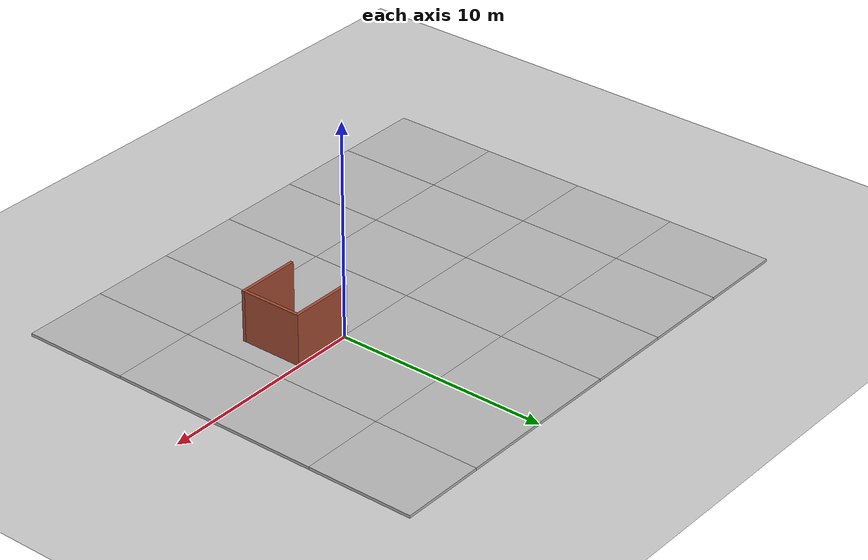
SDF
<sdf version="1.7">
 <world name="default">
  <light name="sun" type="directional">
   <pose>0 0 10 0 -0 0</pose>
   <diffuse>0.8 0.8 0.8 1</diffuse>
   <specular>0.2 0.2 0.2 1</specular>
   <attenuation>
    <range>1000</range>
    <constant>0.9</constant>
    <linear>0.01</linear>
    <quadratic>0.001</quadratic>
   </attenuation>
   <direction>-0.5 0.1 -0.9</direction>
   <spot><inner_angle>0</inner_angle><outer_angle>0</outer_angle><falloff>0</falloff></spot>
  </light>
  <model name="ground_plane">
   <static>1</static>
   <link name="link">
    <collision name="collision">
     <geometry><plane><normal>0 0 1</normal><size>100 100</size></plane></geometry>
     <surface>
      <contact><collide_bitmask>65535</collide_bitmask></contact>
      <friction><ode><mu>100</mu><mu2>50</mu2></ode></friction>
     </surface>
    </collision>
    <visual name="visual">
     <cast_shadows>0</cast_shadows>
     <geometry><plane><normal>0 0 1</normal><size>100 100</size></plane></geometry>
     <material>
      <script><uri>file://media/materials/scripts/gazebo.material</uri><name>Gazebo/Grey</name></script>
     </material>
    </visual>
   </link>
  </model>
  <gravity>0 0 -9.8</gravity>
  <magnetic_field>6e-06 2.3e-05 -4.2e-05</magnetic_field>
  <atmosphere type="adiabatic"/>
  <physics type="ode">
   <max_step_size>0.001</max_step_size>
   <real_time_factor>1</real_time_factor>
   <real_time_update_rate>1000</real_time_update_rate>
  </physics>
  <scene><ambient>0.4 0.4 0.4 1</ambient><background>0.7 0.7 0.7 1</background><shadows>1</shadows></scene>
  <audio><device>default</device></audio>
  <spherical_coordinates>
   <surface_model>EARTH_WGS84</surface_model>
   <latitude_deg>0</latitude_deg>
   <longitude_deg>0</longitude_deg>
   <elevation>0</elevation>
   <heading_deg>0</heading_deg>
  </spherical_coordinates>
  <model name="tomato_fram">
   <pose>1.425 -1.425 0 0 -0 0</pose>
   <link name="Wall_10">
    <collision name="Wall_10_Collision">
     <geometry><box><size>3 0.15 2.5</size></box></geometry>
     <pose>0 0 1.25 0 -0 0</pose>
    </collision>
    <visual name="Wall_10_Visual">
     <pose>0 0 1.25 0 -0 0</pose>
     <geometry><box><size>3 0.15 2.5</size></box></geometry>
     <material>
      <script><uri>file://media/materials/scripts/gazebo.material</uri><name>Gazebo/Bricks</name></script>
      <ambient>1 1 1 1</ambient>
     </material>
     <meta><layer>0</layer></meta>
    </visual>
    <pose>-0 -1.425 0 0 -0 3.14159</pose>
   </link>
   <link name="Wall_5">
    <collision name="Wall_5_Collision">
     <geometry><box><size>3 0.15 2.5</size></box></geometry>
     <pose>0 0 1.25 0 -0 0</pose>
    </collision>
    <visual name="Wall_5_Visual">
     <pose>0 0 1.25 0 -0 0</pose>
     <geometry><box><size>3 0.15 2.5</size></box></geometry>
     <material>
      <script><uri>file://media/materials/scripts/gazebo.material</uri><name>Gazebo/Bricks</name></script>
      <ambient>1 1 1 1</ambient>
     </material>
     <meta><layer>0</layer></meta>
    </visual>
    <pose>-0 1.425 0 0 -0 0</pose>
   </link>
   <link name="Wall_9">
    <collision name="Wall_9_Collision">
     <geometry><box><size>3 0.15 2.5</size></box></geometry>
     <pose>0 0 1.25 0 -0 0</pose>
    </collision>
    <visual name="Wall_9_Visual">
     <pose>0 0 1.25 0 -0 0</pose>
     <geometry><box><size>3 0.15 2.5</size></box></geometry>
     <material>
      <script><uri>file://media/materials/scripts/gazebo.material</uri><name>Gazebo/Bricks</name></script>
      <ambient>1 1 1 1</ambient>
     </material>
     <meta><layer>0</layer></meta>
    </visual>
    <pose>1.425 0 0 0 -0 -1.5708</pose>
   </link>
   <static>1</static>
  </model>
  <model name="mud_box">
   <static>1</static>
   <link name="link">
    <collision name="collision"><geometry><box><size>8 10 0.2</size></box></geometry></collision>
    <visual name="visual_1">
     <pose>-2 2.5 0 0 -0 0</pose>
     <cast_shadows>0</cast_shadows>
     <geometry><box><size>4 5 0.2</size></box></geometry>
     <material>
      <script>
       <uri>model://mud_box/materials/scripts</uri>
       <uri>model://mud_box/materials/textures</uri>
       <name>vrc/mud</name>
      </script>
     </material>
    </visual>
    <visual name="visual_2">
     <pose>2 2.5 0 0 -0 0</pose>
     <cast_shadows>0</cast_shadows>
     <geometry><box><size>4 5 0.2</size></box></geometry>
     <material>
      <script>
       <uri>model://mud_box/materials/scripts</uri>
       <uri>model://mud_box/materials/textures</uri>
       <name>vrc/mud</name>
      </script>
     </material>
    </visual>
    <visual name="visual_3">
     <pose>2 -2.5 0 0 -0 0</pose>
     <cast_shadows>0</cast_shadows>
     <geometry><box><size>4 5 0.2</size></box></geometry>
     <material>
      <script>
       <uri>model://mud_box/materials/scripts</uri>
       <uri>model://mud_box/materials/textures</uri>
       <name>vrc/mud</name>
      </script>
     </material>
    </visual>
    <visual name="visual_4">
     <pose>-2 -2.5 0 0 -0 0</pose>
     <cast_shadows>0</cast_shadows>
     <geometry><box><size>4 5 0.2</size></box></geometry>
     <material>
      <script>
       <uri>model://mud_box/materials/scripts</uri>
       <uri>model://mud_box/materials/textures</uri>
       <name>vrc/mud</name>
      </script>
     </material>
    </visual>
   </link>
   <pose>-4 -5 0 0 -0 0</pose>
  </model>
  <model name="mud_box_0">
   <static>1</static>
   <link name="link">
    <collision name="collision"><geometry><box><size>8 10 0.2</size></box></geometry></collision>
    <visual name="visual_1">
     <pose>-2 2.5 0 0 -0 0</pose>
     <cast_shadows>0</cast_shadows>
     <geometry><box><size>4 5 0.2</size></box></geometry>
     <material>
      <script>
       <uri>model://mud_box/materials/scripts</uri>
       <uri>model://mud_box/materials/textures</uri>
       <name>vrc/mud</name>
      </script>
     </material>
    </visual>
    <visual name="visual_2">
     <pose>2 2.5 0 0 -0 0</pose>
     <cast_shadows>0</cast_shadows>
     <geometry><box><size>4 5 0.2</size></box></geometry>
     <material>
      <script>
       <uri>model://mud_box/materials/scripts</uri>
       <uri>model://mud_box/materials/textures</uri>
       <name>vrc/mud</name>
      </script>
     </material>
    </visual>
    <visual name="visual_3">
     <pose>2 -2.5 0 0 -0 0</pose>
     <cast_shadows>0</cast_shadows>
     <geometry><box><size>4 5 0.2</size></box></geometry>
     <material>
      <script>
       <uri>model://mud_box/materials/scripts</uri>
       <uri>model://mud_box/materials/textures</uri>
       <name>vrc/mud</name>
      </script>
     </material>
    </visual>
    <visual name="visual_4">
     <pose>-2 -2.5 0 0 -0 0</pose>
     <cast_shadows>0</cast_shadows>
     <geometry><box><size>4 5 0.2</size></box></geometry>
     <material>
      <script>
       <uri>model://mud_box/materials/scripts</uri>
       <uri>model://mud_box/materials/textures</uri>
       <name>vrc/mud</name>
      </script>
     </material>
    </visual>
   </link>
   <pose>-4 5 0 0 -0 0</pose>
  </model>
  <model name="mud_box_1">
   <static>1</static>
   <link name="link">
    <collision name="collision"><geometry><box><size>8 10 0.2</size></box></geometry></collision>
    <visual name="visual_1">
     <pose>-2 2.5 0 0 -0 0</pose>
     <cast_shadows>0</cast_shadows>
     <geometry><box><size>4 5 0.2</size></box></geometry>
     <material>
      <script>
       <uri>model://mud_box/materials/scripts</uri>
       <uri>model://mud_box/materials/textures</uri>
       <name>vrc/mud</name>
      </script>
     </material>
    </visual>
    <visual name="visual_2">
     <pose>2 2.5 0 0 -0 0</pose>
     <cast_shadows>0</cast_shadows>
     <geometry><box><size>4 5 0.2</size></box></geometry>
     <material>
      <script>
       <uri>model://mud_box/materials/scripts</uri>
       <uri>model://mud_box/materials/textures</uri>
       <name>vrc/mud</name>
      </script>
     </material>
    </visual>
    <visual name="visual_3">
     <pose>2 -2.5 0 0 -0 0</pose>
     <cast_shadows>0</cast_shadows>
     <geometry><box><size>4 5 0.2</size></box></geometry>
     <material>
      <script>
       <uri>model://mud_box/materials/scripts</uri>
       <uri>model://mud_box/materials/textures</uri>
       <name>vrc/mud</name>
      </script>
     </material>
    </visual>
    <visual name="visual_4">
     <pose>-2 -2.5 0 0 -0 0</pose>
     <cast_shadows>0</cast_shadows>
     <geometry><box><size>4 5 0.2</size></box></geometry>
     <material>
      <script>
       <uri>model://mud_box/materials/scripts</uri>
       <uri>model://mud_box/materials/textures</uri>
       <name>vrc/mud</name>
      </script>
     </material>
    </visual>
   </link>
   <pose>4 -5 0 0 -0 0</pose>
  </model>
  <model name="mud_box_2">
   <static>1</static>
   <link name="link">
    <collision name="collision"><geometry><box><size>8 10 0.2</size></box></geometry></collision>
    <visual name="visual_1">
     <pose>-2 2.5 0 0 -0 0</pose>
     <cast_shadows>0</cast_shadows>
     <geometry><box><size>4 5 0.2</size></box></geometry>
     <material>
      <script>
       <uri>model://mud_box/materials/scripts</uri>
       <uri>model://mud_box/materials/textures</uri>
       <name>vrc/mud</name>
      </script>
     </material>
    </visual>
    <visual name="visual_2">
     <pose>2 2.5 0 0 -0 0</pose>
     <cast_shadows>0</cast_shadows>
     <geometry><box><size>4 5 0.2</size></box></geometry>
     <material>
      <script>
       <uri>model://mud_box/materials/scripts</uri>
       <uri>model://mud_box/materials/textures</uri>
       <name>vrc/mud</name>
      </script>
     </material>
    </visual>
    <visual name="visual_3">
     <pose>2 -2.5 0 0 -0 0</pose>
     <cast_shadows>0</cast_shadows>
     <geometry><box><size>4 5 0.2</size></box></geometry>
     <material>
      <script>
       <uri>model://mud_box/materials/scripts</uri>
       <uri>model://mud_box/materials/textures</uri>
       <name>vrc/mud</name>
      </script>
     </material>
    </visual>
    <visual name="visual_4">
     <pose>-2 -2.5 0 0 -0 0</pose>
     <cast_shadows>0</cast_shadows>
     <geometry><box><size>4 5 0.2</size></box></geometry>
     <material>
      <script>
       <uri>model://mud_box/materials/scripts</uri>
       <uri>model://mud_box/materials/textures</uri>
       <name>vrc/mud</name>
      </script>
     </material>
    </visual>
   </link>
   <pose>4 5 0 0 -0 0</pose>
  </model>
  <model name="mud_box_3">
   <static>1</static>
   <link name="link">
    <collision name="collision"><geometry><box><size>8 10 0.2</size></box></geometry></collision>
    <visual name="visual_1">
     <pose>-2 2.5 0 0 -0 0</pose>
     <cast_shadows>0</cast_shadows>
     <geometry><box><size>4 5 0.2</size></box></geometry>
     <material>
      <script>
       <uri>model://mud_box/materials/scripts</uri>
       <uri>model://mud_box/materials/textures</uri>
       <name>vrc/mud</name>
      </script>
     </material>
    </visual>
    <visual name="visual_2">
     <pose>2 2.5 0 0 -0 0</pose>
     <cast_shadows>0</cast_shadows>
     <geometry><box><size>4 5 0.2</size></box></geometry>
     <material>
      <script>
       <uri>model://mud_box/materials/scripts</uri>
       <uri>model://mud_box/materials/textures</uri>
       <name>vrc/mud</name>
      </script>
     </material>
    </visual>
    <visual name="visual_3">
     <pose>2 -2.5 0 0 -0 0</pose>
     <cast_shadows>0</cast_shadows>
     <geometry><box><size>4 5 0.2</size></box></geometry>
     <material>
      <script>
       <uri>model://mud_box/materials/scripts</uri>
       <uri>model://mud_box/materials/textures</uri>
       <name>vrc/mud</name>
      </script>
     </material>
    </visual>
    <visual name="visual_4">
     <pose>-2 -2.5 0 0 -0 0</pose>
     <cast_shadows>0</cast_shadows>
     <geometry><box><size>4 5 0.2</size></box></geometry>
     <material>
      <script>
       <uri>model://mud_box/materials/scripts</uri>
       <uri>model://mud_box/materials/textures</uri>
       <name>vrc/mud</name>
      </script>
     </material>
    </visual>
   </link>
   <pose>-12 -5 0 0 -0 0</pose>
  </model>
  <model name="mud_box_4">
   <static>1</static>
   <link name="link">
    <collision name="collision"><geometry><box><size>8 10 0.2</size></box></geometry></collision>
    <visual name="visual_1">
     <pose>-2 2.5 0 0 -0 0</pose>
     <cast_shadows>0</cast_shadows>
     <geometry><box><size>4 5 0.2</size></box></geometry>
     <material>
      <script>
       <uri>model://mud_box/materials/scripts</uri>
       <uri>model://mud_box/materials/textures</uri>
       <name>vrc/mud</name>
      </script>
     </material>
    </visual>
    <visual name="visual_2">
     <pose>2 2.5 0 0 -0 0</pose>
     <cast_shadows>0</cast_shadows>
     <geometry><box><size>4 5 0.2</size></box></geometry>
     <material>
      <script>
       <uri>model://mud_box/materials/scripts</uri>
       <uri>model://mud_box/materials/textures</uri>
       <name>vrc/mud</name>
      </script>
     </material>
    </visual>
    <visual name="visual_3">
     <pose>2 -2.5 0 0 -0 0</pose>
     <cast_shadows>0</cast_shadows>
     <geometry><box><size>4 5 0.2</size></box></geometry>
     <material>
      <script>
       <uri>model://mud_box/materials/scripts</uri>
       <uri>model://mud_box/materials/textures</uri>
       <name>vrc/mud</name>
      </script>
     </material>
    </visual>
    <visual name="visual_4">
     <pose>-2 -2.5 0 0 -0 0</pose>
     <cast_shadows>0</cast_shadows>
     <geometry><box><size>4 5 0.2</size></box></geometry>
     <material>
      <script>
       <uri>model://mud_box/materials/scripts</uri>
       <uri>model://mud_box/materials/textures</uri>
       <name>vrc/mud</name>
      </script>
     </material>
    </visual>
   </link>
   <pose>-12 5 0 0 -0 0</pose>
  </model>
 </world>
</sdf>
